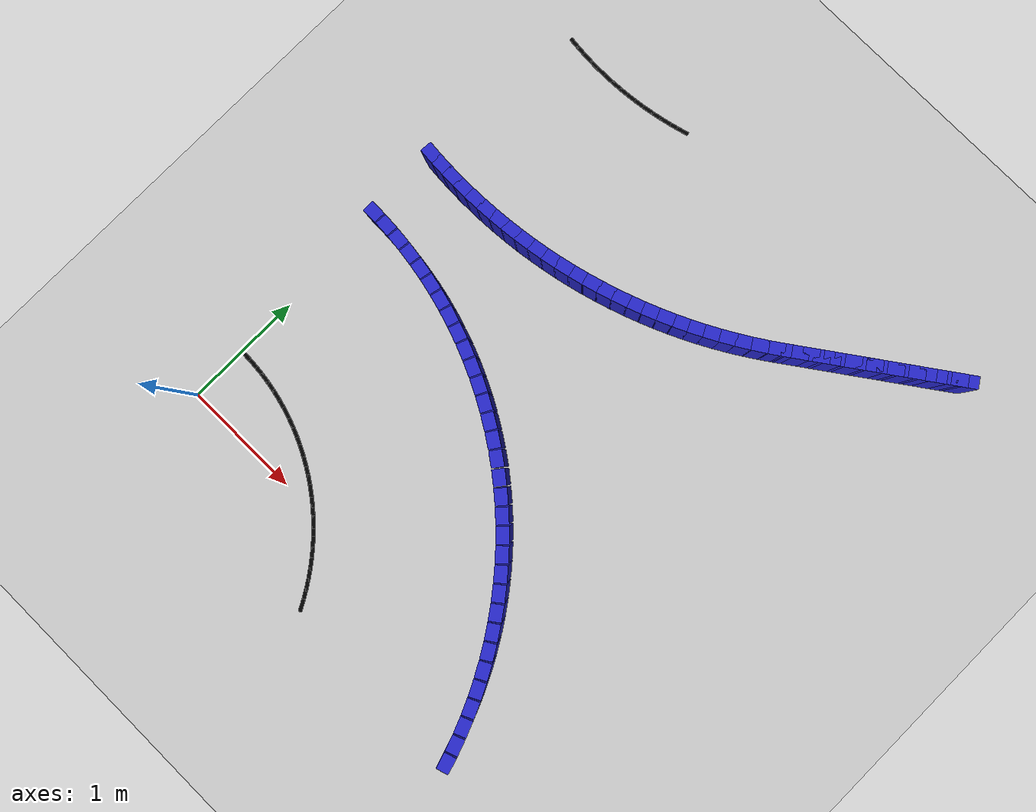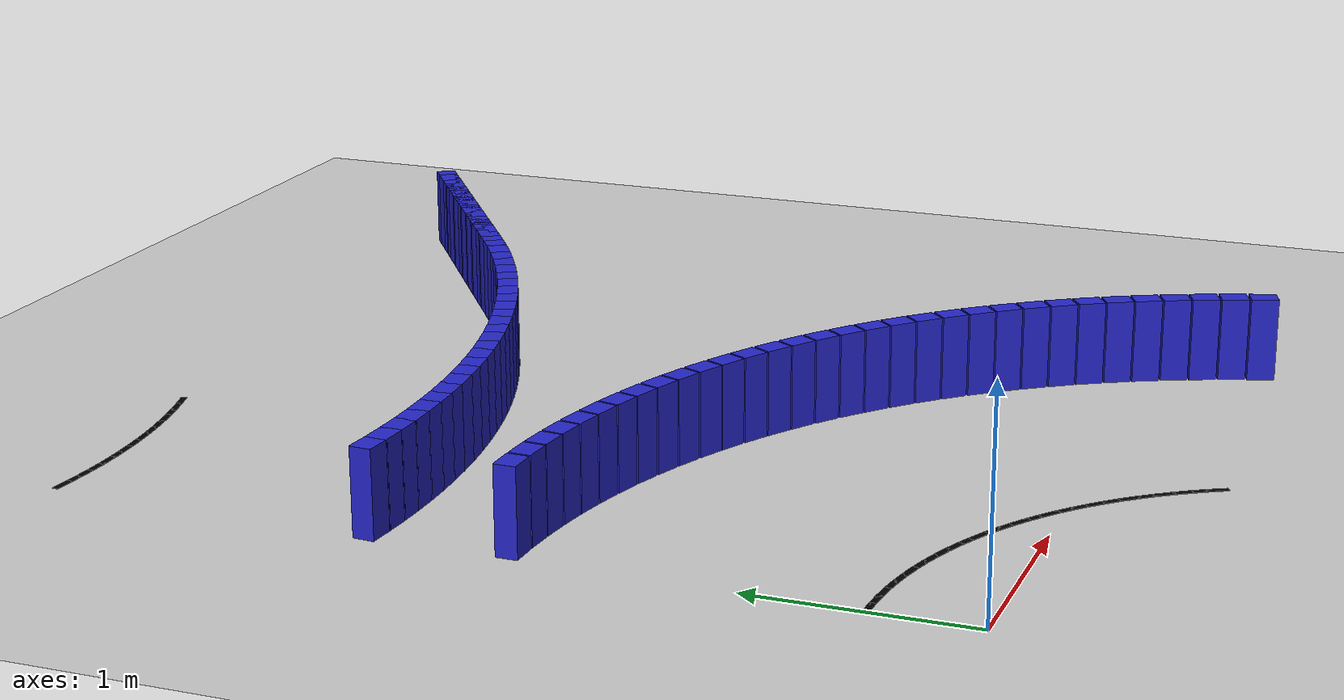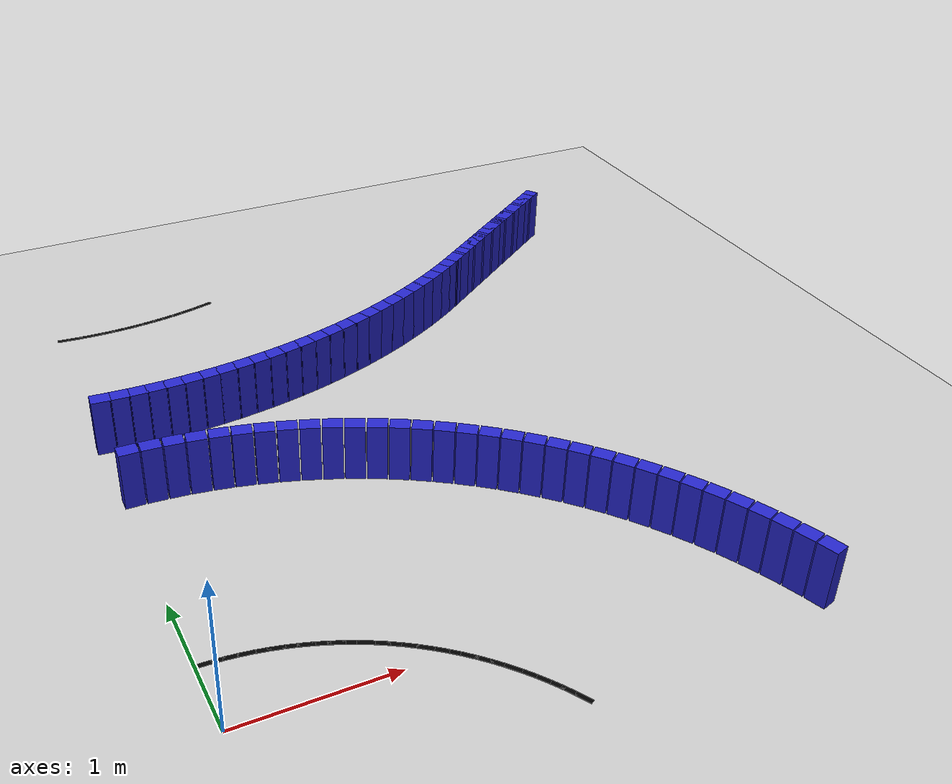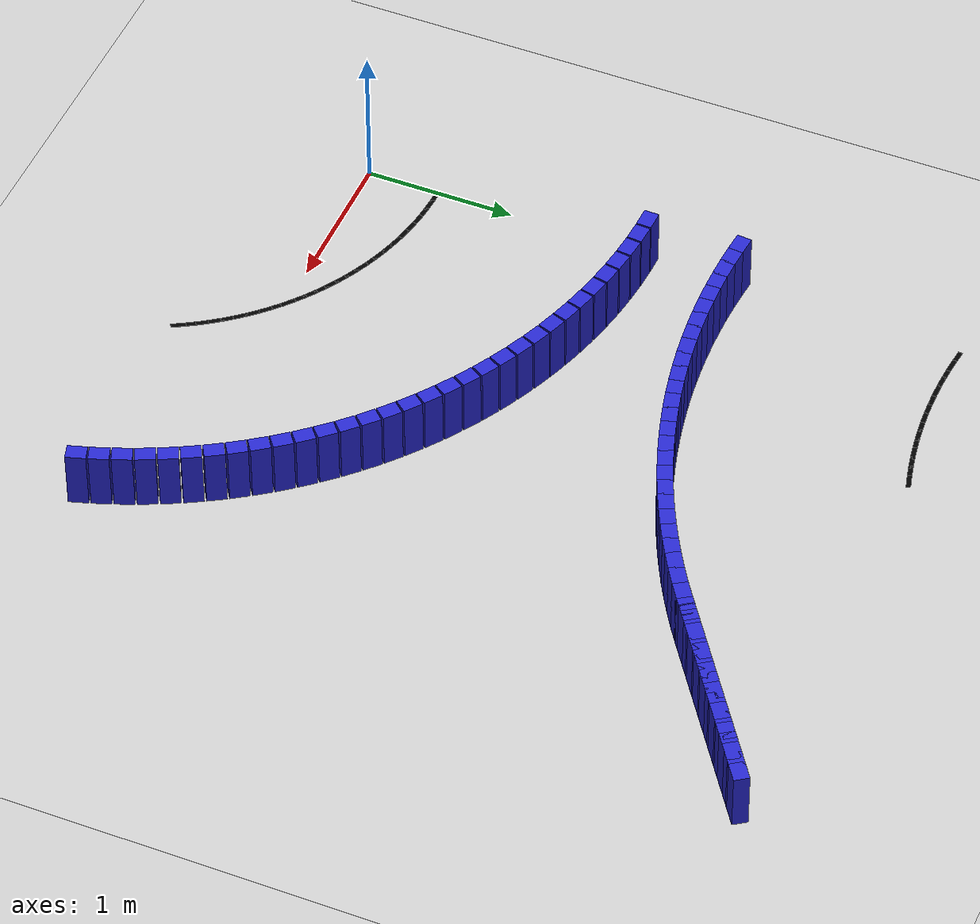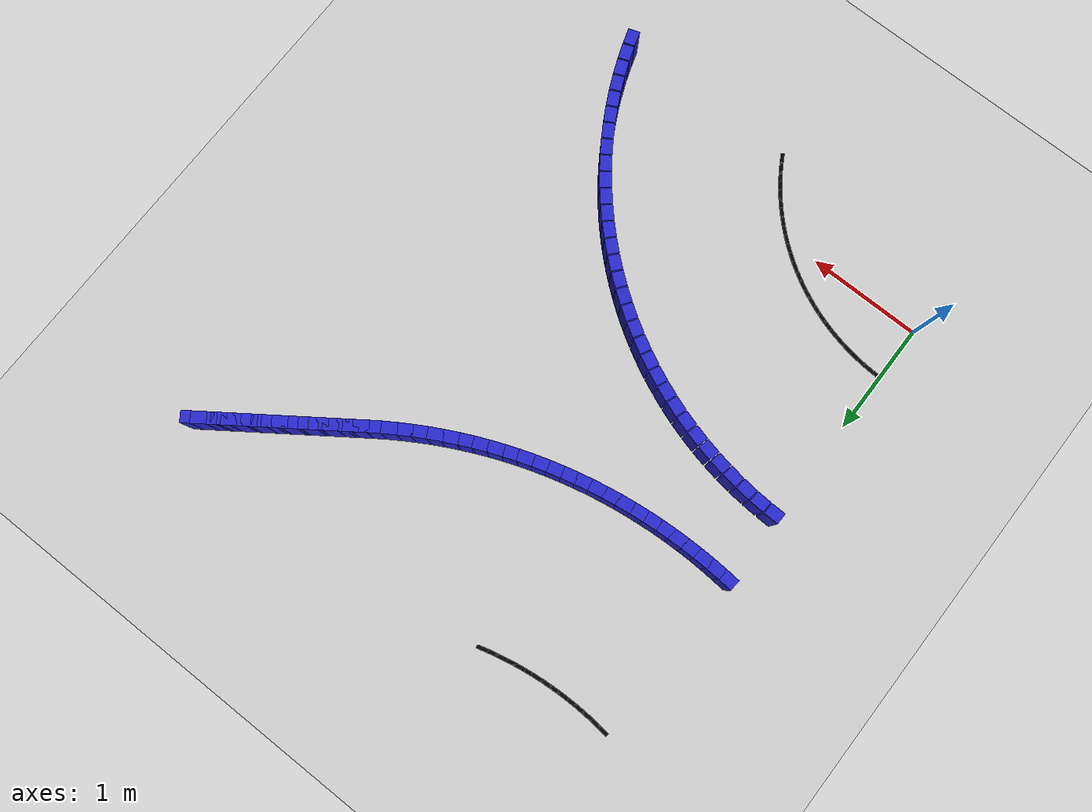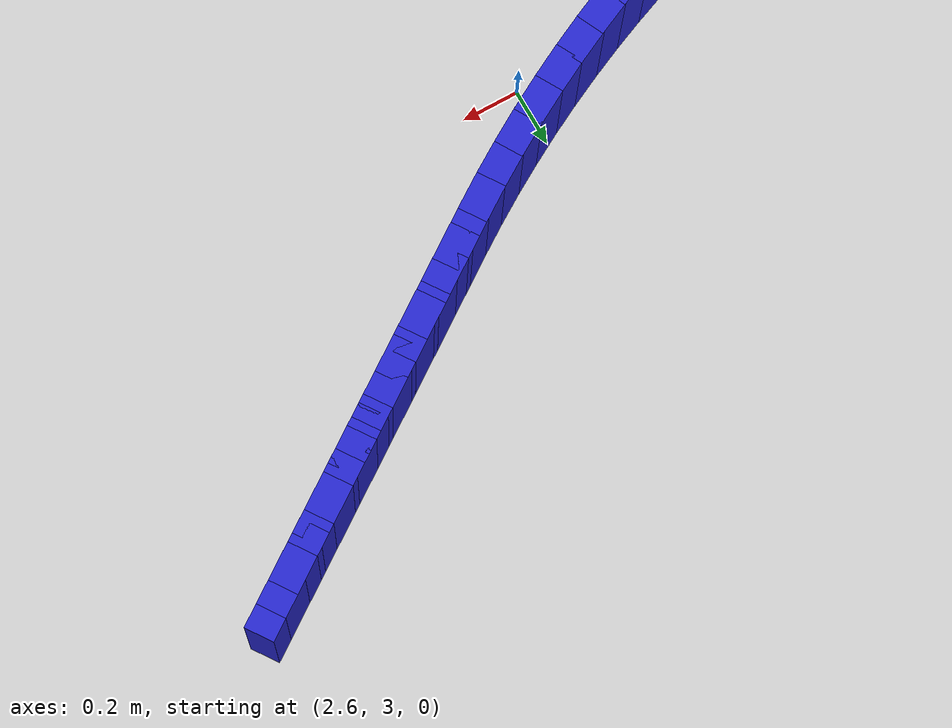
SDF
<sdf version="1.6">
 <world name="new_race_track">
  <include><uri>model://ground_plane</uri></include>
  <include><uri>model://sun</uri></include>
  <model name="iw_223">
   <static>true</static>
   <pose>0.0705 1.9789 0.200 0 0 -0.0201</pose>
   <link name="l">
    <collision name="c"><geometry><box><size>0.1305 0.1 0.4</size></box></geometry></collision>
    <visual name="v">
     <geometry><box><size>0.1305 0.1 0.4</size></box></geometry>
     <material><ambient>0.15 0.15 0.8 1</ambient><diffuse>0.15 0.15 0.8 1</diffuse></material>
    </visual>
   </link>
  </model>
  <model name="iw_224">
   <static>true</static>
   <pose>0.2113 1.9732 0.200 0 0 -0.0604</pose>
   <link name="l">
    <collision name="c"><geometry><box><size>0.1305 0.1 0.4</size></box></geometry></collision>
    <visual name="v">
     <geometry><box><size>0.1305 0.1 0.4</size></box></geometry>
     <material><ambient>0.15 0.15 0.8 1</ambient><diffuse>0.15 0.15 0.8 1</diffuse></material>
    </visual>
   </link>
  </model>
  <model name="iw_225">
   <static>true</static>
   <pose>0.3518 1.9619 0.200 0 0 -0.1007</pose>
   <link name="l">
    <collision name="c"><geometry><box><size>0.1305 0.1 0.4</size></box></geometry></collision>
    <visual name="v">
     <geometry><box><size>0.1305 0.1 0.4</size></box></geometry>
     <material><ambient>0.15 0.15 0.8 1</ambient><diffuse>0.15 0.15 0.8 1</diffuse></material>
    </visual>
   </link>
  </model>
  <model name="iw_226">
   <static>true</static>
   <pose>0.4917 1.9449 0.200 0 0 -0.1410</pose>
   <link name="l">
    <collision name="c"><geometry><box><size>0.1305 0.1 0.4</size></box></geometry></collision>
    <visual name="v">
     <geometry><box><size>0.1305 0.1 0.4</size></box></geometry>
     <material><ambient>0.15 0.15 0.8 1</ambient><diffuse>0.15 0.15 0.8 1</diffuse></material>
    </visual>
   </link>
  </model>
  <model name="iw_227">
   <static>true</static>
   <pose>0.6308 1.9223 0.200 0 0 -0.1812</pose>
   <link name="l">
    <collision name="c"><geometry><box><size>0.1305 0.1 0.4</size></box></geometry></collision>
    <visual name="v">
     <geometry><box><size>0.1305 0.1 0.4</size></box></geometry>
     <material><ambient>0.15 0.15 0.8 1</ambient><diffuse>0.15 0.15 0.8 1</diffuse></material>
    </visual>
   </link>
  </model>
  <model name="iw_228">
   <static>true</static>
   <pose>0.7689 1.8941 0.200 0 0 -0.2215</pose>
   <link name="l">
    <collision name="c"><geometry><box><size>0.1305 0.1 0.4</size></box></geometry></collision>
    <visual name="v">
     <geometry><box><size>0.1305 0.1 0.4</size></box></geometry>
     <material><ambient>0.15 0.15 0.8 1</ambient><diffuse>0.15 0.15 0.8 1</diffuse></material>
    </visual>
   </link>
  </model>
  <model name="iw_229">
   <static>true</static>
   <pose>0.9058 1.8603 0.200 0 0 -0.2618</pose>
   <link name="l">
    <collision name="c"><geometry><box><size>0.1305 0.1 0.4</size></box></geometry></collision>
    <visual name="v">
     <geometry><box><size>0.1305 0.1 0.4</size></box></geometry>
     <material><ambient>0.15 0.15 0.8 1</ambient><diffuse>0.15 0.15 0.8 1</diffuse></material>
    </visual>
   </link>
  </model>
  <model name="iw_230">
   <static>true</static>
   <pose>1.0411 1.8211 0.200 0 0 -0.3021</pose>
   <link name="l">
    <collision name="c"><geometry><box><size>0.1305 0.1 0.4</size></box></geometry></collision>
    <visual name="v">
     <geometry><box><size>0.1305 0.1 0.4</size></box></geometry>
     <material><ambient>0.15 0.15 0.8 1</ambient><diffuse>0.15 0.15 0.8 1</diffuse></material>
    </visual>
   </link>
  </model>
  <model name="iw_231">
   <static>true</static>
   <pose>1.1748 1.7765 0.200 0 0 -0.3424</pose>
   <link name="l">
    <collision name="c"><geometry><box><size>0.1305 0.1 0.4</size></box></geometry></collision>
    <visual name="v">
     <geometry><box><size>0.1305 0.1 0.4</size></box></geometry>
     <material><ambient>0.15 0.15 0.8 1</ambient><diffuse>0.15 0.15 0.8 1</diffuse></material>
    </visual>
   </link>
  </model>
  <model name="iw_232">
   <static>true</static>
   <pose>1.3066 1.7265 0.200 0 0 -0.3826</pose>
   <link name="l">
    <collision name="c"><geometry><box><size>0.1305 0.1 0.4</size></box></geometry></collision>
    <visual name="v">
     <geometry><box><size>0.1305 0.1 0.4</size></box></geometry>
     <material><ambient>0.15 0.15 0.8 1</ambient><diffuse>0.15 0.15 0.8 1</diffuse></material>
    </visual>
   </link>
  </model>
  <model name="iw_233">
   <static>true</static>
   <pose>1.4363 1.6713 0.200 0 0 -0.4229</pose>
   <link name="l">
    <collision name="c"><geometry><box><size>0.1305 0.1 0.4</size></box></geometry></collision>
    <visual name="v">
     <geometry><box><size>0.1305 0.1 0.4</size></box></geometry>
     <material><ambient>0.15 0.15 0.8 1</ambient><diffuse>0.15 0.15 0.8 1</diffuse></material>
    </visual>
   </link>
  </model>
  <model name="iw_234">
   <static>true</static>
   <pose>1.5636 1.6109 0.200 0 0 -0.4632</pose>
   <link name="l">
    <collision name="c"><geometry><box><size>0.1305 0.1 0.4</size></box></geometry></collision>
    <visual name="v">
     <geometry><box><size>0.1305 0.1 0.4</size></box></geometry>
     <material><ambient>0.15 0.15 0.8 1</ambient><diffuse>0.15 0.15 0.8 1</diffuse></material>
    </visual>
   </link>
  </model>
  <model name="iw_235">
   <static>true</static>
   <pose>1.6884 1.5454 0.200 0 0 -0.5035</pose>
   <link name="l">
    <collision name="c"><geometry><box><size>0.1305 0.1 0.4</size></box></geometry></collision>
    <visual name="v">
     <geometry><box><size>0.1305 0.1 0.4</size></box></geometry>
     <material><ambient>0.15 0.15 0.8 1</ambient><diffuse>0.15 0.15 0.8 1</diffuse></material>
    </visual>
   </link>
  </model>
  <model name="iw_236">
   <static>true</static>
   <pose>1.8105 1.4749 0.200 0 0 -0.5437</pose>
   <link name="l">
    <collision name="c"><geometry><box><size>0.1305 0.1 0.4</size></box></geometry></collision>
    <visual name="v">
     <geometry><box><size>0.1305 0.1 0.4</size></box></geometry>
     <material><ambient>0.15 0.15 0.8 1</ambient><diffuse>0.15 0.15 0.8 1</diffuse></material>
    </visual>
   </link>
  </model>
  <model name="iw_237">
   <static>true</static>
   <pose>1.9296 1.3996 0.200 0 0 -0.5840</pose>
   <link name="l">
    <collision name="c"><geometry><box><size>0.1305 0.1 0.4</size></box></geometry></collision>
    <visual name="v">
     <geometry><box><size>0.1305 0.1 0.4</size></box></geometry>
     <material><ambient>0.15 0.15 0.8 1</ambient><diffuse>0.15 0.15 0.8 1</diffuse></material>
    </visual>
   </link>
  </model>
  <model name="iw_238">
   <static>true</static>
   <pose>2.0456 1.3195 0.200 0 0 -0.6243</pose>
   <link name="l">
    <collision name="c"><geometry><box><size>0.1305 0.1 0.4</size></box></geometry></collision>
    <visual name="v">
     <geometry><box><size>0.1305 0.1 0.4</size></box></geometry>
     <material><ambient>0.15 0.15 0.8 1</ambient><diffuse>0.15 0.15 0.8 1</diffuse></material>
    </visual>
   </link>
  </model>
  <model name="iw_239">
   <static>true</static>
   <pose>2.1583 1.2348 0.200 0 0 -0.6646</pose>
   <link name="l">
    <collision name="c"><geometry><box><size>0.1305 0.1 0.4</size></box></geometry></collision>
    <visual name="v">
     <geometry><box><size>0.1305 0.1 0.4</size></box></geometry>
     <material><ambient>0.15 0.15 0.8 1</ambient><diffuse>0.15 0.15 0.8 1</diffuse></material>
    </visual>
   </link>
  </model>
  <model name="iw_240">
   <static>true</static>
   <pose>2.2674 1.1457 0.200 0 0 -0.7048</pose>
   <link name="l">
    <collision name="c"><geometry><box><size>0.1305 0.1 0.4</size></box></geometry></collision>
    <visual name="v">
     <geometry><box><size>0.1305 0.1 0.4</size></box></geometry>
     <material><ambient>0.15 0.15 0.8 1</ambient><diffuse>0.15 0.15 0.8 1</diffuse></material>
    </visual>
   </link>
  </model>
  <model name="iw_241">
   <static>true</static>
   <pose>2.3729 1.0522 0.200 0 0 -0.7451</pose>
   <link name="l">
    <collision name="c"><geometry><box><size>0.1305 0.1 0.4</size></box></geometry></collision>
    <visual name="v">
     <geometry><box><size>0.1305 0.1 0.4</size></box></geometry>
     <material><ambient>0.15 0.15 0.8 1</ambient><diffuse>0.15 0.15 0.8 1</diffuse></material>
    </visual>
   </link>
  </model>
  <model name="iw_242">
   <static>true</static>
   <pose>2.4746 0.9546 0.200 0 0 -0.7854</pose>
   <link name="l">
    <collision name="c"><geometry><box><size>0.1305 0.1 0.4</size></box></geometry></collision>
    <visual name="v">
     <geometry><box><size>0.1305 0.1 0.4</size></box></geometry>
     <material><ambient>0.15 0.15 0.8 1</ambient><diffuse>0.15 0.15 0.8 1</diffuse></material>
    </visual>
   </link>
  </model>
  <model name="iw_243">
   <static>true</static>
   <pose>2.5722 0.8529 0.200 0 0 -0.8257</pose>
   <link name="l">
    <collision name="c"><geometry><box><size>0.1305 0.1 0.4</size></box></geometry></collision>
    <visual name="v">
     <geometry><box><size>0.1305 0.1 0.4</size></box></geometry>
     <material><ambient>0.15 0.15 0.8 1</ambient><diffuse>0.15 0.15 0.8 1</diffuse></material>
    </visual>
   </link>
  </model>
  <model name="iw_244">
   <static>true</static>
   <pose>2.6657 0.7474 0.200 0 0 -0.8660</pose>
   <link name="l">
    <collision name="c"><geometry><box><size>0.1305 0.1 0.4</size></box></geometry></collision>
    <visual name="v">
     <geometry><box><size>0.1305 0.1 0.4</size></box></geometry>
     <material><ambient>0.15 0.15 0.8 1</ambient><diffuse>0.15 0.15 0.8 1</diffuse></material>
    </visual>
   </link>
  </model>
  <model name="iw_245">
   <static>true</static>
   <pose>2.7548 0.6383 0.200 0 0 -0.9062</pose>
   <link name="l">
    <collision name="c"><geometry><box><size>0.1305 0.1 0.4</size></box></geometry></collision>
    <visual name="v">
     <geometry><box><size>0.1305 0.1 0.4</size></box></geometry>
     <material><ambient>0.15 0.15 0.8 1</ambient><diffuse>0.15 0.15 0.8 1</diffuse></material>
    </visual>
   </link>
  </model>
  <model name="iw_246">
   <static>true</static>
   <pose>2.8395 0.5256 0.200 0 0 -0.9465</pose>
   <link name="l">
    <collision name="c"><geometry><box><size>0.1305 0.1 0.4</size></box></geometry></collision>
    <visual name="v">
     <geometry><box><size>0.1305 0.1 0.4</size></box></geometry>
     <material><ambient>0.15 0.15 0.8 1</ambient><diffuse>0.15 0.15 0.8 1</diffuse></material>
    </visual>
   </link>
  </model>
  <model name="iw_247">
   <static>true</static>
   <pose>2.9196 0.4096 0.200 0 0 -0.9868</pose>
   <link name="l">
    <collision name="c"><geometry><box><size>0.1305 0.1 0.4</size></box></geometry></collision>
    <visual name="v">
     <geometry><box><size>0.1305 0.1 0.4</size></box></geometry>
     <material><ambient>0.15 0.15 0.8 1</ambient><diffuse>0.15 0.15 0.8 1</diffuse></material>
    </visual>
   </link>
  </model>
  <model name="iw_248">
   <static>true</static>
   <pose>2.9949 0.2905 0.200 0 0 -1.0271</pose>
   <link name="l">
    <collision name="c"><geometry><box><size>0.1305 0.1 0.4</size></box></geometry></collision>
    <visual name="v">
     <geometry><box><size>0.1305 0.1 0.4</size></box></geometry>
     <material><ambient>0.15 0.15 0.8 1</ambient><diffuse>0.15 0.15 0.8 1</diffuse></material>
    </visual>
   </link>
  </model>
  <model name="iw_249">
   <static>true</static>
   <pose>3.0654 0.1684 0.200 0 0 -1.0673</pose>
   <link name="l">
    <collision name="c"><geometry><box><size>0.1305 0.1 0.4</size></box></geometry></collision>
    <visual name="v">
     <geometry><box><size>0.1305 0.1 0.4</size></box></geometry>
     <material><ambient>0.15 0.15 0.8 1</ambient><diffuse>0.15 0.15 0.8 1</diffuse></material>
    </visual>
   </link>
  </model>
  <model name="iw_250">
   <static>true</static>
   <pose>3.1309 0.0436 0.200 0 0 -1.1076</pose>
   <link name="l">
    <collision name="c"><geometry><box><size>0.1305 0.1 0.4</size></box></geometry></collision>
    <visual name="v">
     <geometry><box><size>0.1305 0.1 0.4</size></box></geometry>
     <material><ambient>0.15 0.15 0.8 1</ambient><diffuse>0.15 0.15 0.8 1</diffuse></material>
    </visual>
   </link>
  </model>
  <model name="iw_251">
   <static>true</static>
   <pose>3.1913 -0.0837 0.200 0 0 -1.1479</pose>
   <link name="l">
    <collision name="c"><geometry><box><size>0.1305 0.1 0.4</size></box></geometry></collision>
    <visual name="v">
     <geometry><box><size>0.1305 0.1 0.4</size></box></geometry>
     <material><ambient>0.15 0.15 0.8 1</ambient><diffuse>0.15 0.15 0.8 1</diffuse></material>
    </visual>
   </link>
  </model>
  <model name="iw_252">
   <static>true</static>
   <pose>3.2465 -0.2134 0.200 0 0 -1.1882</pose>
   <link name="l">
    <collision name="c"><geometry><box><size>0.1305 0.1 0.4</size></box></geometry></collision>
    <visual name="v">
     <geometry><box><size>0.1305 0.1 0.4</size></box></geometry>
     <material><ambient>0.15 0.15 0.8 1</ambient><diffuse>0.15 0.15 0.8 1</diffuse></material>
    </visual>
   </link>
  </model>
  <model name="iw_253">
   <static>true</static>
   <pose>3.2965 -0.3452 0.200 0 0 -1.2284</pose>
   <link name="l">
    <collision name="c"><geometry><box><size>0.1305 0.1 0.4</size></box></geometry></collision>
    <visual name="v">
     <geometry><box><size>0.1305 0.1 0.4</size></box></geometry>
     <material><ambient>0.15 0.15 0.8 1</ambient><diffuse>0.15 0.15 0.8 1</diffuse></material>
    </visual>
   </link>
  </model>
  <model name="iw_254">
   <static>true</static>
   <pose>3.3411 -0.4789 0.200 0 0 -1.2687</pose>
   <link name="l">
    <collision name="c"><geometry><box><size>0.1305 0.1 0.4</size></box></geometry></collision>
    <visual name="v">
     <geometry><box><size>0.1305 0.1 0.4</size></box></geometry>
     <material><ambient>0.15 0.15 0.8 1</ambient><diffuse>0.15 0.15 0.8 1</diffuse></material>
    </visual>
   </link>
  </model>
  <model name="iw_569">
   <static>true</static>
   <pose>4.1469 4.2058 0.200 0 0 -2.5307</pose>
   <link name="l">
    <collision name="c"><geometry><box><size>0.1300 0.1 0.4</size></box></geometry></collision>
    <visual name="v">
     <geometry><box><size>0.1300 0.1 0.4</size></box></geometry>
     <material><ambient>0.15 0.15 0.8 1</ambient><diffuse>0.15 0.15 0.8 1</diffuse></material>
    </visual>
   </link>
  </model>
  <model name="iw_570">
   <static>true</static>
   <pose>4.0813 4.1599 0.200 0 0 -2.5307</pose>
   <link name="l">
    <collision name="c"><geometry><box><size>0.1300 0.1 0.4</size></box></geometry></collision>
    <visual name="v">
     <geometry><box><size>0.1300 0.1 0.4</size></box></geometry>
     <material><ambient>0.15 0.15 0.8 1</ambient><diffuse>0.15 0.15 0.8 1</diffuse></material>
    </visual>
   </link>
  </model>
  <model name="iw_571">
   <static>true</static>
   <pose>4.0158 4.1140 0.200 0 0 -2.5307</pose>
   <link name="l">
    <collision name="c"><geometry><box><size>0.1300 0.1 0.4</size></box></geometry></collision>
    <visual name="v">
     <geometry><box><size>0.1300 0.1 0.4</size></box></geometry>
     <material><ambient>0.15 0.15 0.8 1</ambient><diffuse>0.15 0.15 0.8 1</diffuse></material>
    </visual>
   </link>
  </model>
  <model name="iw_572">
   <static>true</static>
   <pose>3.9503 4.0681 0.200 0 0 -2.5307</pose>
   <link name="l">
    <collision name="c"><geometry><box><size>0.1300 0.1 0.4</size></box></geometry></collision>
    <visual name="v">
     <geometry><box><size>0.1300 0.1 0.4</size></box></geometry>
     <material><ambient>0.15 0.15 0.8 1</ambient><diffuse>0.15 0.15 0.8 1</diffuse></material>
    </visual>
   </link>
  </model>
  <model name="iw_573">
   <static>true</static>
   <pose>3.8847 4.0222 0.200 0 0 -2.5307</pose>
   <link name="l">
    <collision name="c"><geometry><box><size>0.1300 0.1 0.4</size></box></geometry></collision>
    <visual name="v">
     <geometry><box><size>0.1300 0.1 0.4</size></box></geometry>
     <material><ambient>0.15 0.15 0.8 1</ambient><diffuse>0.15 0.15 0.8 1</diffuse></material>
    </visual>
   </link>
  </model>
  <model name="iw_574">
   <static>true</static>
   <pose>3.8192 3.9764 0.200 0 0 -2.5307</pose>
   <link name="l">
    <collision name="c"><geometry><box><size>0.1300 0.1 0.4</size></box></geometry></collision>
    <visual name="v">
     <geometry><box><size>0.1300 0.1 0.4</size></box></geometry>
     <material><ambient>0.15 0.15 0.8 1</ambient><diffuse>0.15 0.15 0.8 1</diffuse></material>
    </visual>
   </link>
  </model>
  <model name="iw_575">
   <static>true</static>
   <pose>3.7537 3.9305 0.200 0 0 -2.5307</pose>
   <link name="l">
    <collision name="c"><geometry><box><size>0.1300 0.1 0.4</size></box></geometry></collision>
    <visual name="v">
     <geometry><box><size>0.1300 0.1 0.4</size></box></geometry>
     <material><ambient>0.15 0.15 0.8 1</ambient><diffuse>0.15 0.15 0.8 1</diffuse></material>
    </visual>
   </link>
  </model>
  <model name="iw_576">
   <static>true</static>
   <pose>3.6881 3.8846 0.200 0 0 -2.5307</pose>
   <link name="l">
    <collision name="c"><geometry><box><size>0.1300 0.1 0.4</size></box></geometry></collision>
    <visual name="v">
     <geometry><box><size>0.1300 0.1 0.4</size></box></geometry>
     <material><ambient>0.15 0.15 0.8 1</ambient><diffuse>0.15 0.15 0.8 1</diffuse></material>
    </visual>
   </link>
  </model>
  <model name="iw_577">
   <static>true</static>
   <pose>3.6226 3.8387 0.200 0 0 -2.5307</pose>
   <link name="l">
    <collision name="c"><geometry><box><size>0.1300 0.1 0.4</size></box></geometry></collision>
    <visual name="v">
     <geometry><box><size>0.1300 0.1 0.4</size></box></geometry>
     <material><ambient>0.15 0.15 0.8 1</ambient><diffuse>0.15 0.15 0.8 1</diffuse></material>
    </visual>
   </link>
  </model>
  <model name="iw_578">
   <static>true</static>
   <pose>3.5571 3.7928 0.200 0 0 -2.5307</pose>
   <link name="l">
    <collision name="c"><geometry><box><size>0.1300 0.1 0.4</size></box></geometry></collision>
    <visual name="v">
     <geometry><box><size>0.1300 0.1 0.4</size></box></geometry>
     <material><ambient>0.15 0.15 0.8 1</ambient><diffuse>0.15 0.15 0.8 1</diffuse></material>
    </visual>
   </link>
  </model>
  <model name="iw_579">
   <static>true</static>
   <pose>3.4915 3.7469 0.200 0 0 -2.5307</pose>
   <link name="l">
    <collision name="c"><geometry><box><size>0.1300 0.1 0.4</size></box></geometry></collision>
    <visual name="v">
     <geometry><box><size>0.1300 0.1 0.4</size></box></geometry>
     <material><ambient>0.15 0.15 0.8 1</ambient><diffuse>0.15 0.15 0.8 1</diffuse></material>
    </visual>
   </link>
  </model>
  <model name="iw_580">
   <static>true</static>
   <pose>3.4260 3.7010 0.200 0 0 -2.5307</pose>
   <link name="l">
    <collision name="c"><geometry><box><size>0.1300 0.1 0.4</size></box></geometry></collision>
    <visual name="v">
     <geometry><box><size>0.1300 0.1 0.4</size></box></geometry>
     <material><ambient>0.15 0.15 0.8 1</ambient><diffuse>0.15 0.15 0.8 1</diffuse></material>
    </visual>
   </link>
  </model>
  <model name="iw_581">
   <static>true</static>
   <pose>3.3605 3.6552 0.200 0 0 -2.5307</pose>
   <link name="l">
    <collision name="c"><geometry><box><size>0.1300 0.1 0.4</size></box></geometry></collision>
    <visual name="v">
     <geometry><box><size>0.1300 0.1 0.4</size></box></geometry>
     <material><ambient>0.15 0.15 0.8 1</ambient><diffuse>0.15 0.15 0.8 1</diffuse></material>
    </visual>
   </link>
  </model>
  <model name="iw_582">
   <static>true</static>
   <pose>3.2950 3.6093 0.200 0 0 -2.5307</pose>
   <link name="l">
    <collision name="c"><geometry><box><size>0.1300 0.1 0.4</size></box></geometry></collision>
    <visual name="v">
     <geometry><box><size>0.1300 0.1 0.4</size></box></geometry>
     <material><ambient>0.15 0.15 0.8 1</ambient><diffuse>0.15 0.15 0.8 1</diffuse></material>
    </visual>
   </link>
  </model>
  <model name="iw_583">
   <static>true</static>
   <pose>3.2294 3.5634 0.200 0 0 -2.5307</pose>
   <link name="l">
    <collision name="c"><geometry><box><size>0.1300 0.1 0.4</size></box></geometry></collision>
    <visual name="v">
     <geometry><box><size>0.1300 0.1 0.4</size></box></geometry>
     <material><ambient>0.15 0.15 0.8 1</ambient><diffuse>0.15 0.15 0.8 1</diffuse></material>
    </visual>
   </link>
  </model>
  <model name="iw_584">
   <static>true</static>
   <pose>3.1639 3.5175 0.200 0 0 -2.5307</pose>
   <link name="l">
    <collision name="c"><geometry><box><size>0.1300 0.1 0.4</size></box></geometry></collision>
    <visual name="v">
     <geometry><box><size>0.1300 0.1 0.4</size></box></geometry>
     <material><ambient>0.15 0.15 0.8 1</ambient><diffuse>0.15 0.15 0.8 1</diffuse></material>
    </visual>
   </link>
  </model>
  <model name="iw_585">
   <static>true</static>
   <pose>3.0984 3.4716 0.200 0 0 -2.5307</pose>
   <link name="l">
    <collision name="c"><geometry><box><size>0.1300 0.1 0.4</size></box></geometry></collision>
    <visual name="v">
     <geometry><box><size>0.1300 0.1 0.4</size></box></geometry>
     <material><ambient>0.15 0.15 0.8 1</ambient><diffuse>0.15 0.15 0.8 1</diffuse></material>
    </visual>
   </link>
  </model>
  <model name="iw_586">
   <static>true</static>
   <pose>3.0328 3.4257 0.200 0 0 -2.5307</pose>
   <link name="l">
    <collision name="c"><geometry><box><size>0.1300 0.1 0.4</size></box></geometry></collision>
    <visual name="v">
     <geometry><box><size>0.1300 0.1 0.4</size></box></geometry>
     <material><ambient>0.15 0.15 0.8 1</ambient><diffuse>0.15 0.15 0.8 1</diffuse></material>
    </visual>
   </link>
  </model>
  <model name="iw_587">
   <static>true</static>
   <pose>2.9496 3.3683 0.200 0 0 -2.5443</pose>
   <link name="l">
    <collision name="c"><geometry><box><size>0.1314 0.1 0.4</size></box></geometry></collision>
    <visual name="v">
     <geometry><box><size>0.1314 0.1 0.4</size></box></geometry>
     <material><ambient>0.15 0.15 0.8 1</ambient><diffuse>0.15 0.15 0.8 1</diffuse></material>
    </visual>
   </link>
  </model>
  <model name="iw_588">
   <static>true</static>
   <pose>2.8477 3.3010 0.200 0 0 -2.5715</pose>
   <link name="l">
    <collision name="c"><geometry><box><size>0.1314 0.1 0.4</size></box></geometry></collision>
    <visual name="v">
     <geometry><box><size>0.1314 0.1 0.4</size></box></geometry>
     <material><ambient>0.15 0.15 0.8 1</ambient><diffuse>0.15 0.15 0.8 1</diffuse></material>
    </visual>
   </link>
  </model>
  <model name="iw_589">
   <static>true</static>
   <pose>2.7440 3.2364 0.200 0 0 -2.5986</pose>
   <link name="l">
    <collision name="c"><geometry><box><size>0.1314 0.1 0.4</size></box></geometry></collision>
    <visual name="v">
     <geometry><box><size>0.1314 0.1 0.4</size></box></geometry>
     <material><ambient>0.15 0.15 0.8 1</ambient><diffuse>0.15 0.15 0.8 1</diffuse></material>
    </visual>
   </link>
  </model>
  <model name="iw_590">
   <static>true</static>
   <pose>2.6385 3.1748 0.200 0 0 -2.6258</pose>
   <link name="l">
    <collision name="c"><geometry><box><size>0.1314 0.1 0.4</size></box></geometry></collision>
    <visual name="v">
     <geometry><box><size>0.1314 0.1 0.4</size></box></geometry>
     <material><ambient>0.15 0.15 0.8 1</ambient><diffuse>0.15 0.15 0.8 1</diffuse></material>
    </visual>
   </link>
  </model>
  <model name="iw_591">
   <static>true</static>
   <pose>2.5315 3.1159 0.200 0 0 -2.6529</pose>
   <link name="l">
    <collision name="c"><geometry><box><size>0.1314 0.1 0.4</size></box></geometry></collision>
    <visual name="v">
     <geometry><box><size>0.1314 0.1 0.4</size></box></geometry>
     <material><ambient>0.15 0.15 0.8 1</ambient><diffuse>0.15 0.15 0.8 1</diffuse></material>
    </visual>
   </link>
  </model>
  <model name="iw_592">
   <static>true</static>
   <pose>2.4228 3.0601 0.200 0 0 -2.6801</pose>
   <link name="l">
    <collision name="c"><geometry><box><size>0.1314 0.1 0.4</size></box></geometry></collision>
    <visual name="v">
     <geometry><box><size>0.1314 0.1 0.4</size></box></geometry>
     <material><ambient>0.15 0.15 0.8 1</ambient><diffuse>0.15 0.15 0.8 1</diffuse></material>
    </visual>
   </link>
  </model>
  <model name="iw_593">
   <static>true</static>
   <pose>2.3127 3.0071 0.200 0 0 -2.7072</pose>
   <link name="l">
    <collision name="c"><geometry><box><size>0.1314 0.1 0.4</size></box></geometry></collision>
    <visual name="v">
     <geometry><box><size>0.1314 0.1 0.4</size></box></geometry>
     <material><ambient>0.15 0.15 0.8 1</ambient><diffuse>0.15 0.15 0.8 1</diffuse></material>
    </visual>
   </link>
  </model>
  <model name="iw_594">
   <static>true</static>
   <pose>2.2012 2.9572 0.200 0 0 -2.7343</pose>
   <link name="l">
    <collision name="c"><geometry><box><size>0.1314 0.1 0.4</size></box></geometry></collision>
    <visual name="v">
     <geometry><box><size>0.1314 0.1 0.4</size></box></geometry>
     <material><ambient>0.15 0.15 0.8 1</ambient><diffuse>0.15 0.15 0.8 1</diffuse></material>
    </visual>
   </link>
  </model>
  <model name="iw_595">
   <static>true</static>
   <pose>2.0884 2.9104 0.200 0 0 -2.7615</pose>
   <link name="l">
    <collision name="c"><geometry><box><size>0.1314 0.1 0.4</size></box></geometry></collision>
    <visual name="v">
     <geometry><box><size>0.1314 0.1 0.4</size></box></geometry>
     <material><ambient>0.15 0.15 0.8 1</ambient><diffuse>0.15 0.15 0.8 1</diffuse></material>
    </visual>
   </link>
  </model>
  <model name="iw_596">
   <static>true</static>
   <pose>1.9743 2.8666 0.200 0 0 -2.7886</pose>
   <link name="l">
    <collision name="c"><geometry><box><size>0.1314 0.1 0.4</size></box></geometry></collision>
    <visual name="v">
     <geometry><box><size>0.1314 0.1 0.4</size></box></geometry>
     <material><ambient>0.15 0.15 0.8 1</ambient><diffuse>0.15 0.15 0.8 1</diffuse></material>
    </visual>
   </link>
  </model>
  <model name="iw_597">
   <static>true</static>
   <pose>1.8592 2.8259 0.200 0 0 -2.8158</pose>
   <link name="l">
    <collision name="c"><geometry><box><size>0.1314 0.1 0.4</size></box></geometry></collision>
    <visual name="v">
     <geometry><box><size>0.1314 0.1 0.4</size></box></geometry>
     <material><ambient>0.15 0.15 0.8 1</ambient><diffuse>0.15 0.15 0.8 1</diffuse></material>
    </visual>
   </link>
  </model>
  <model name="iw_598">
   <static>true</static>
   <pose>1.7429 2.7884 0.200 0 0 -2.8429</pose>
   <link name="l">
    <collision name="c"><geometry><box><size>0.1314 0.1 0.4</size></box></geometry></collision>
    <visual name="v">
     <geometry><box><size>0.1314 0.1 0.4</size></box></geometry>
     <material><ambient>0.15 0.15 0.8 1</ambient><diffuse>0.15 0.15 0.8 1</diffuse></material>
    </visual>
   </link>
  </model>
  <model name="iw_599">
   <static>true</static>
   <pose>1.6257 2.7541 0.200 0 0 -2.8701</pose>
   <link name="l">
    <collision name="c"><geometry><box><size>0.1314 0.1 0.4</size></box></geometry></collision>
    <visual name="v">
     <geometry><box><size>0.1314 0.1 0.4</size></box></geometry>
     <material><ambient>0.15 0.15 0.8 1</ambient><diffuse>0.15 0.15 0.8 1</diffuse></material>
    </visual>
   </link>
  </model>
  <model name="iw_600">
   <static>true</static>
   <pose>1.5075 2.7229 0.200 0 0 -2.8972</pose>
   <link name="l">
    <collision name="c"><geometry><box><size>0.1314 0.1 0.4</size></box></geometry></collision>
    <visual name="v">
     <geometry><box><size>0.1314 0.1 0.4</size></box></geometry>
     <material><ambient>0.15 0.15 0.8 1</ambient><diffuse>0.15 0.15 0.8 1</diffuse></material>
    </visual>
   </link>
  </model>
  <model name="iw_601">
   <static>true</static>
   <pose>1.3886 2.6950 0.200 0 0 -2.9244</pose>
   <link name="l">
    <collision name="c"><geometry><box><size>0.1314 0.1 0.4</size></box></geometry></collision>
    <visual name="v">
     <geometry><box><size>0.1314 0.1 0.4</size></box></geometry>
     <material><ambient>0.15 0.15 0.8 1</ambient><diffuse>0.15 0.15 0.8 1</diffuse></material>
    </visual>
   </link>
  </model>
  <model name="iw_602">
   <static>true</static>
   <pose>1.2690 2.6703 0.200 0 0 -2.9515</pose>
   <link name="l">
    <collision name="c"><geometry><box><size>0.1314 0.1 0.4</size></box></geometry></collision>
    <visual name="v">
     <geometry><box><size>0.1314 0.1 0.4</size></box></geometry>
     <material><ambient>0.15 0.15 0.8 1</ambient><diffuse>0.15 0.15 0.8 1</diffuse></material>
    </visual>
   </link>
  </model>
  <model name="iw_603">
   <static>true</static>
   <pose>1.1487 2.6488 0.200 0 0 -2.9787</pose>
   <link name="l">
    <collision name="c"><geometry><box><size>0.1314 0.1 0.4</size></box></geometry></collision>
    <visual name="v">
     <geometry><box><size>0.1314 0.1 0.4</size></box></geometry>
     <material><ambient>0.15 0.15 0.8 1</ambient><diffuse>0.15 0.15 0.8 1</diffuse></material>
    </visual>
   </link>
  </model>
  <model name="iw_604">
   <static>true</static>
   <pose>1.0279 2.6306 0.200 0 0 -3.0058</pose>
   <link name="l">
    <collision name="c"><geometry><box><size>0.1314 0.1 0.4</size></box></geometry></collision>
    <visual name="v">
     <geometry><box><size>0.1314 0.1 0.4</size></box></geometry>
     <material><ambient>0.15 0.15 0.8 1</ambient><diffuse>0.15 0.15 0.8 1</diffuse></material>
    </visual>
   </link>
  </model>
  <model name="iw_605">
   <static>true</static>
   <pose>0.9067 2.6157 0.200 0 0 -3.0330</pose>
   <link name="l">
    <collision name="c"><geometry><box><size>0.1314 0.1 0.4</size></box></geometry></collision>
    <visual name="v">
     <geometry><box><size>0.1314 0.1 0.4</size></box></geometry>
     <material><ambient>0.15 0.15 0.8 1</ambient><diffuse>0.15 0.15 0.8 1</diffuse></material>
    </visual>
   </link>
  </model>
  <model name="iw_606">
   <static>true</static>
   <pose>0.7851 2.6042 0.200 0 0 -3.0601</pose>
   <link name="l">
    <collision name="c"><geometry><box><size>0.1314 0.1 0.4</size></box></geometry></collision>
    <visual name="v">
     <geometry><box><size>0.1314 0.1 0.4</size></box></geometry>
     <material><ambient>0.15 0.15 0.8 1</ambient><diffuse>0.15 0.15 0.8 1</diffuse></material>
    </visual>
   </link>
  </model>
  <model name="iw_607">
   <static>true</static>
   <pose>0.6632 2.5959 0.200 0 0 -3.0873</pose>
   <link name="l">
    <collision name="c"><geometry><box><size>0.1314 0.1 0.4</size></box></geometry></collision>
    <visual name="v">
     <geometry><box><size>0.1314 0.1 0.4</size></box></geometry>
     <material><ambient>0.15 0.15 0.8 1</ambient><diffuse>0.15 0.15 0.8 1</diffuse></material>
    </visual>
   </link>
  </model>
  <model name="iw_608">
   <static>true</static>
   <pose>0.5411 2.5909 0.200 0 0 -3.1144</pose>
   <link name="l">
    <collision name="c"><geometry><box><size>0.1314 0.1 0.4</size></box></geometry></collision>
    <visual name="v">
     <geometry><box><size>0.1314 0.1 0.4</size></box></geometry>
     <material><ambient>0.15 0.15 0.8 1</ambient><diffuse>0.15 0.15 0.8 1</diffuse></material>
    </visual>
   </link>
  </model>
  <model name="iw_609">
   <static>true</static>
   <pose>0.4190 2.5892 0.200 0 0 3.1416</pose>
   <link name="l">
    <collision name="c"><geometry><box><size>0.1314 0.1 0.4</size></box></geometry></collision>
    <visual name="v">
     <geometry><box><size>0.1314 0.1 0.4</size></box></geometry>
     <material><ambient>0.15 0.15 0.8 1</ambient><diffuse>0.15 0.15 0.8 1</diffuse></material>
    </visual>
   </link>
  </model>
  <model name="iw_610">
   <static>true</static>
   <pose>0.2968 2.5909 0.200 0 0 3.1144</pose>
   <link name="l">
    <collision name="c"><geometry><box><size>0.1314 0.1 0.4</size></box></geometry></collision>
    <visual name="v">
     <geometry><box><size>0.1314 0.1 0.4</size></box></geometry>
     <material><ambient>0.15 0.15 0.8 1</ambient><diffuse>0.15 0.15 0.8 1</diffuse></material>
    </visual>
   </link>
  </model>
  <model name="iw_611">
   <static>true</static>
   <pose>0.1748 2.5959 0.200 0 0 3.0873</pose>
   <link name="l">
    <collision name="c"><geometry><box><size>0.1314 0.1 0.4</size></box></geometry></collision>
    <visual name="v">
     <geometry><box><size>0.1314 0.1 0.4</size></box></geometry>
     <material><ambient>0.15 0.15 0.8 1</ambient><diffuse>0.15 0.15 0.8 1</diffuse></material>
    </visual>
   </link>
  </model>
  <model name="iw_612">
   <static>true</static>
   <pose>0.0529 2.6042 0.200 0 0 3.0601</pose>
   <link name="l">
    <collision name="c"><geometry><box><size>0.1314 0.1 0.4</size></box></geometry></collision>
    <visual name="v">
     <geometry><box><size>0.1314 0.1 0.4</size></box></geometry>
     <material><ambient>0.15 0.15 0.8 1</ambient><diffuse>0.15 0.15 0.8 1</diffuse></material>
    </visual>
   </link>
  </model>
  <model name="line_223">
   <static>true</static>
   <pose>0.0403 0.4792 0.002 0 0 -0.0201</pose>
   <link name="l">
    <visual name="v">
     <geometry><box><size>0.1005 0.03 0.002</size></box></geometry>
     <material><ambient>0 0 0 1</ambient><diffuse>0 0 0 1</diffuse></material>
    </visual>
   </link>
  </model>
  <model name="line_224">
   <static>true</static>
   <pose>0.1207 0.4759 0.002 0 0 -0.0604</pose>
   <link name="l">
    <visual name="v">
     <geometry><box><size>0.1005 0.03 0.002</size></box></geometry>
     <material><ambient>0 0 0 1</ambient><diffuse>0 0 0 1</diffuse></material>
    </visual>
   </link>
  </model>
  <model name="line_225">
   <static>true</static>
   <pose>0.2010 0.4695 0.002 0 0 -0.1007</pose>
   <link name="l">
    <visual name="v">
     <geometry><box><size>0.1005 0.03 0.002</size></box></geometry>
     <material><ambient>0 0 0 1</ambient><diffuse>0 0 0 1</diffuse></material>
    </visual>
   </link>
  </model>
  <model name="line_226">
   <static>true</static>
   <pose>0.2809 0.4598 0.002 0 0 -0.1410</pose>
   <link name="l">
    <visual name="v">
     <geometry><box><size>0.1005 0.03 0.002</size></box></geometry>
     <material><ambient>0 0 0 1</ambient><diffuse>0 0 0 1</diffuse></material>
    </visual>
   </link>
  </model>
  <model name="line_227">
   <static>true</static>
   <pose>0.3604 0.4468 0.002 0 0 -0.1812</pose>
   <link name="l">
    <visual name="v">
     <geometry><box><size>0.1005 0.03 0.002</size></box></geometry>
     <material><ambient>0 0 0 1</ambient><diffuse>0 0 0 1</diffuse></material>
    </visual>
   </link>
  </model>
  <model name="line_228">
   <static>true</static>
   <pose>0.4393 0.4307 0.002 0 0 -0.2215</pose>
   <link name="l">
    <visual name="v">
     <geometry><box><size>0.1005 0.03 0.002</size></box></geometry>
     <material><ambient>0 0 0 1</ambient><diffuse>0 0 0 1</diffuse></material>
    </visual>
   </link>
  </model>
  <model name="line_229">
   <static>true</static>
   <pose>0.5175 0.4115 0.002 0 0 -0.2618</pose>
   <link name="l">
    <visual name="v">
     <geometry><box><size>0.1005 0.03 0.002</size></box></geometry>
     <material><ambient>0 0 0 1</ambient><diffuse>0 0 0 1</diffuse></material>
    </visual>
   </link>
  </model>
  <model name="line_230">
   <static>true</static>
   <pose>0.5949 0.3891 0.002 0 0 -0.3021</pose>
   <link name="l">
    <visual name="v">
     <geometry><box><size>0.1005 0.03 0.002</size></box></geometry>
     <material><ambient>0 0 0 1</ambient><diffuse>0 0 0 1</diffuse></material>
    </visual>
   </link>
  </model>
  <model name="line_231">
   <static>true</static>
   <pose>0.6713 0.3636 0.002 0 0 -0.3424</pose>
   <link name="l">
    <visual name="v">
     <geometry><box><size>0.1005 0.03 0.002</size></box></geometry>
     <material><ambient>0 0 0 1</ambient><diffuse>0 0 0 1</diffuse></material>
    </visual>
   </link>
  </model>
  <model name="line_232">
   <static>true</static>
   <pose>0.7466 0.3350 0.002 0 0 -0.3826</pose>
   <link name="l">
    <visual name="v">
     <geometry><box><size>0.1005 0.03 0.002</size></box></geometry>
     <material><ambient>0 0 0 1</ambient><diffuse>0 0 0 1</diffuse></material>
    </visual>
   </link>
  </model>
  <model name="line_233">
   <static>true</static>
   <pose>0.8207 0.3034 0.002 0 0 -0.4229</pose>
   <link name="l">
    <visual name="v">
     <geometry><box><size>0.1005 0.03 0.002</size></box></geometry>
     <material><ambient>0 0 0 1</ambient><diffuse>0 0 0 1</diffuse></material>
    </visual>
   </link>
  </model>
  <model name="line_234">
   <static>true</static>
   <pose>0.8934 0.2689 0.002 0 0 -0.4632</pose>
   <link name="l">
    <visual name="v">
     <geometry><box><size>0.1005 0.03 0.002</size></box></geometry>
     <material><ambient>0 0 0 1</ambient><diffuse>0 0 0 1</diffuse></material>
    </visual>
   </link>
  </model>
  <model name="line_235">
   <static>true</static>
   <pose>0.9647 0.2315 0.002 0 0 -0.5035</pose>
   <link name="l">
    <visual name="v">
     <geometry><box><size>0.1005 0.03 0.002</size></box></geometry>
     <material><ambient>0 0 0 1</ambient><diffuse>0 0 0 1</diffuse></material>
    </visual>
   </link>
  </model>
  <model name="line_236">
   <static>true</static>
   <pose>1.0345 0.1912 0.002 0 0 -0.5437</pose>
   <link name="l">
    <visual name="v">
     <geometry><box><size>0.1005 0.03 0.002</size></box></geometry>
     <material><ambient>0 0 0 1</ambient><diffuse>0 0 0 1</diffuse></material>
    </visual>
   </link>
  </model>
  <model name="line_237">
   <static>true</static>
   <pose>1.1025 0.1482 0.002 0 0 -0.5840</pose>
   <link name="l">
    <visual name="v">
     <geometry><box><size>0.1005 0.03 0.002</size></box></geometry>
     <material><ambient>0 0 0 1</ambient><diffuse>0 0 0 1</diffuse></material>
    </visual>
   </link>
  </model>
  <model name="line_238">
   <static>true</static>
   <pose>1.1688 0.1024 0.002 0 0 -0.6243</pose>
   <link name="l">
    <visual name="v">
     <geometry><box><size>0.1005 0.03 0.002</size></box></geometry>
     <material><ambient>0 0 0 1</ambient><diffuse>0 0 0 1</diffuse></material>
    </visual>
   </link>
  </model>
  <model name="line_239">
   <static>true</static>
   <pose>1.2332 0.0540 0.002 0 0 -0.6646</pose>
   <link name="l">
    <visual name="v">
     <geometry><box><size>0.1005 0.03 0.002</size></box></geometry>
     <material><ambient>0 0 0 1</ambient><diffuse>0 0 0 1</diffuse></material>
    </visual>
   </link>
  </model>
  <model name="line_240">
   <static>true</static>
   <pose>1.2956 0.0031 0.002 0 0 -0.7048</pose>
   <link name="l">
    <visual name="v">
     <geometry><box><size>0.1005 0.03 0.002</size></box></geometry>
     <material><ambient>0 0 0 1</ambient><diffuse>0 0 0 1</diffuse></material>
    </visual>
   </link>
  </model>
  <model name="line_241">
   <static>true</static>
   <pose>1.3558 -0.0503 0.002 0 0 -0.7451</pose>
   <link name="l">
    <visual name="v">
     <geometry><box><size>0.1005 0.03 0.002</size></box></geometry>
     <material><ambient>0 0 0 1</ambient><diffuse>0 0 0 1</diffuse></material>
    </visual>
   </link>
  </model>
  <model name="line_242">
   <static>true</static>
   <pose>1.4139 -0.1061 0.002 0 0 -0.7854</pose>
   <link name="l">
    <visual name="v">
     <geometry><box><size>0.1005 0.03 0.002</size></box></geometry>
     <material><ambient>0 0 0 1</ambient><diffuse>0 0 0 1</diffuse></material>
    </visual>
   </link>
  </model>
  <model name="line_243">
   <static>true</static>
   <pose>1.4697 -0.1642 0.002 0 0 -0.8257</pose>
   <link name="l">
    <visual name="v">
     <geometry><box><size>0.1005 0.03 0.002</size></box></geometry>
     <material><ambient>0 0 0 1</ambient><diffuse>0 0 0 1</diffuse></material>
    </visual>
   </link>
  </model>
  <model name="line_244">
   <static>true</static>
   <pose>1.5231 -0.2244 0.002 0 0 -0.8660</pose>
   <link name="l">
    <visual name="v">
     <geometry><box><size>0.1005 0.03 0.002</size></box></geometry>
     <material><ambient>0 0 0 1</ambient><diffuse>0 0 0 1</diffuse></material>
    </visual>
   </link>
  </model>
  <model name="line_245">
   <static>true</static>
   <pose>1.5740 -0.2868 0.002 0 0 -0.9062</pose>
   <link name="l">
    <visual name="v">
     <geometry><box><size>0.1005 0.03 0.002</size></box></geometry>
     <material><ambient>0 0 0 1</ambient><diffuse>0 0 0 1</diffuse></material>
    </visual>
   </link>
  </model>
  <model name="line_246">
   <static>true</static>
   <pose>1.6224 -0.3512 0.002 0 0 -0.9465</pose>
   <link name="l">
    <visual name="v">
     <geometry><box><size>0.1005 0.03 0.002</size></box></geometry>
     <material><ambient>0 0 0 1</ambient><diffuse>0 0 0 1</diffuse></material>
    </visual>
   </link>
  </model>
  <model name="line_247">
   <static>true</static>
   <pose>1.6682 -0.4175 0.002 0 0 -0.9868</pose>
   <link name="l">
    <visual name="v">
     <geometry><box><size>0.1005 0.03 0.002</size></box></geometry>
     <material><ambient>0 0 0 1</ambient><diffuse>0 0 0 1</diffuse></material>
    </visual>
   </link>
  </model>
  <model name="line_248">
   <static>true</static>
   <pose>1.7112 -0.4855 0.002 0 0 -1.0271</pose>
   <link name="l">
    <visual name="v">
     <geometry><box><size>0.1005 0.03 0.002</size></box></geometry>
     <material><ambient>0 0 0 1</ambient><diffuse>0 0 0 1</diffuse></material>
    </visual>
   </link>
  </model>
  <model name="line_249">
   <static>true</static>
   <pose>1.7515 -0.5553 0.002 0 0 -1.0673</pose>
   <link name="l">
    <visual name="v">
     <geometry><box><size>0.1005 0.03 0.002</size></box></geometry>
     <material><ambient>0 0 0 1</ambient><diffuse>0 0 0 1</diffuse></material>
    </visual>
   </link>
  </model>
  <model name="line_599">
   <static>true</static>
   <pose>1.2234 4.1991 0.002 0 0 -2.8701</pose>
   <link name="l">
    <visual name="v">
     <geometry><box><size>0.1014 0.03 0.002</size></box></geometry>
     <material><ambient>0 0 0 1</ambient><diffuse>0 0 0 1</diffuse></material>
    </visual>
   </link>
  </model>
  <model name="line_600">
   <static>true</static>
   <pose>1.1447 4.1783 0.002 0 0 -2.8972</pose>
   <link name="l">
    <visual name="v">
     <geometry><box><size>0.1014 0.03 0.002</size></box></geometry>
     <material><ambient>0 0 0 1</ambient><diffuse>0 0 0 1</diffuse></material>
    </visual>
   </link>
  </model>
  <model name="line_601">
   <static>true</static>
   <pose>1.0654 4.1597 0.002 0 0 -2.9244</pose>
   <link name="l">
    <visual name="v">
     <geometry><box><size>0.1014 0.03 0.002</size></box></geometry>
     <material><ambient>0 0 0 1</ambient><diffuse>0 0 0 1</diffuse></material>
    </visual>
   </link>
  </model>
  <model name="line_602">
   <static>true</static>
   <pose>0.9856 4.1432 0.002 0 0 -2.9515</pose>
   <link name="l">
    <visual name="v">
     <geometry><box><size>0.1014 0.03 0.002</size></box></geometry>
     <material><ambient>0 0 0 1</ambient><diffuse>0 0 0 1</diffuse></material>
    </visual>
   </link>
  </model>
  <model name="line_603">
   <static>true</static>
   <pose>0.9055 4.1290 0.002 0 0 -2.9787</pose>
   <link name="l">
    <visual name="v">
     <geometry><box><size>0.1014 0.03 0.002</size></box></geometry>
     <material><ambient>0 0 0 1</ambient><diffuse>0 0 0 1</diffuse></material>
    </visual>
   </link>
  </model>
  <model name="line_604">
   <static>true</static>
   <pose>0.8249 4.1168 0.002 0 0 -3.0058</pose>
   <link name="l">
    <visual name="v">
     <geometry><box><size>0.1014 0.03 0.002</size></box></geometry>
     <material><ambient>0 0 0 1</ambient><diffuse>0 0 0 1</diffuse></material>
    </visual>
   </link>
  </model>
  <model name="line_605">
   <static>true</static>
   <pose>0.7441 4.1069 0.002 0 0 -3.0330</pose>
   <link name="l">
    <visual name="v">
     <geometry><box><size>0.1014 0.03 0.002</size></box></geometry>
     <material><ambient>0 0 0 1</ambient><diffuse>0 0 0 1</diffuse></material>
    </visual>
   </link>
  </model>
  <model name="line_606">
   <static>true</static>
   <pose>0.6630 4.0992 0.002 0 0 -3.0601</pose>
   <link name="l">
    <visual name="v">
     <geometry><box><size>0.1014 0.03 0.002</size></box></geometry>
     <material><ambient>0 0 0 1</ambient><diffuse>0 0 0 1</diffuse></material>
    </visual>
   </link>
  </model>
  <model name="line_607">
   <static>true</static>
   <pose>0.5818 4.0937 0.002 0 0 -3.0873</pose>
   <link name="l">
    <visual name="v">
     <geometry><box><size>0.1014 0.03 0.002</size></box></geometry>
     <material><ambient>0 0 0 1</ambient><diffuse>0 0 0 1</diffuse></material>
    </visual>
   </link>
  </model>
  <model name="line_608">
   <static>true</static>
   <pose>0.5004 4.0903 0.002 0 0 -3.1144</pose>
   <link name="l">
    <visual name="v">
     <geometry><box><size>0.1014 0.03 0.002</size></box></geometry>
     <material><ambient>0 0 0 1</ambient><diffuse>0 0 0 1</diffuse></material>
    </visual>
   </link>
  </model>
  <model name="line_609">
   <static>true</static>
   <pose>0.4190 4.0892 0.002 0 0 3.1416</pose>
   <link name="l">
    <visual name="v">
     <geometry><box><size>0.1014 0.03 0.002</size></box></geometry>
     <material><ambient>0 0 0 1</ambient><diffuse>0 0 0 1</diffuse></material>
    </visual>
   </link>
  </model>
  <model name="line_610">
   <static>true</static>
   <pose>0.3375 4.0903 0.002 0 0 3.1144</pose>
   <link name="l">
    <visual name="v">
     <geometry><box><size>0.1014 0.03 0.002</size></box></geometry>
     <material><ambient>0 0 0 1</ambient><diffuse>0 0 0 1</diffuse></material>
    </visual>
   </link>
  </model>
  <model name="line_611">
   <static>true</static>
   <pose>0.2562 4.0937 0.002 0 0 3.0873</pose>
   <link name="l">
    <visual name="v">
     <geometry><box><size>0.1014 0.03 0.002</size></box></geometry>
     <material><ambient>0 0 0 1</ambient><diffuse>0 0 0 1</diffuse></material>
    </visual>
   </link>
  </model>
  <model name="line_612">
   <static>true</static>
   <pose>0.1749 4.0992 0.002 0 0 3.0601</pose>
   <link name="l">
    <visual name="v">
     <geometry><box><size>0.1014 0.03 0.002</size></box></geometry>
     <material><ambient>0 0 0 1</ambient><diffuse>0 0 0 1</diffuse></material>
    </visual>
   </link>
  </model>
  <model name="line_613">
   <static>true</static>
   <pose>0.0938 4.1069 0.002 0 0 3.0330</pose>
   <link name="l">
    <visual name="v">
     <geometry><box><size>0.1014 0.03 0.002</size></box></geometry>
     <material><ambient>0 0 0 1</ambient><diffuse>0 0 0 1</diffuse></material>
    </visual>
   </link>
  </model>
 </world>
</sdf>
